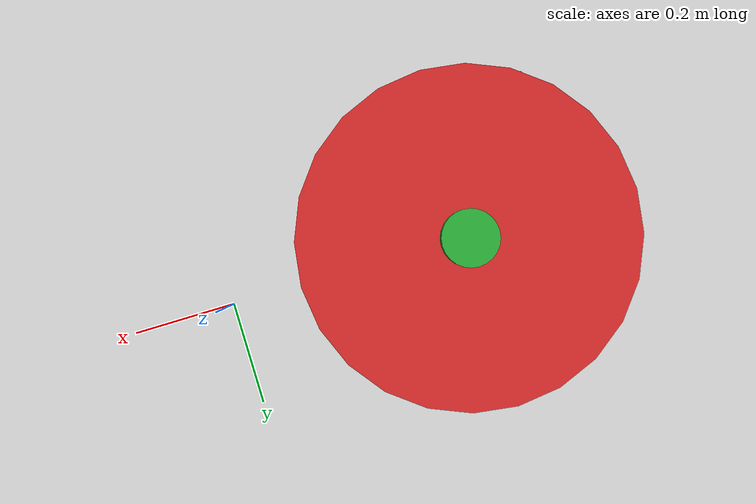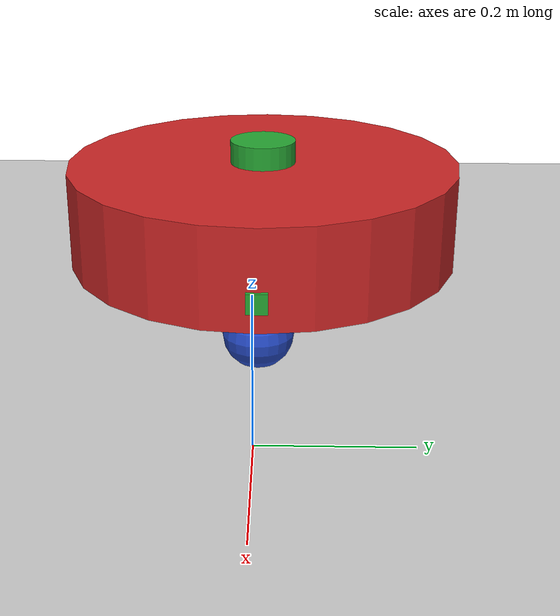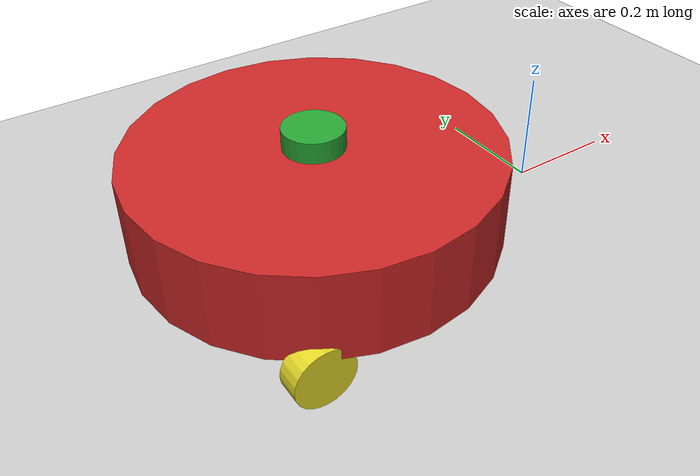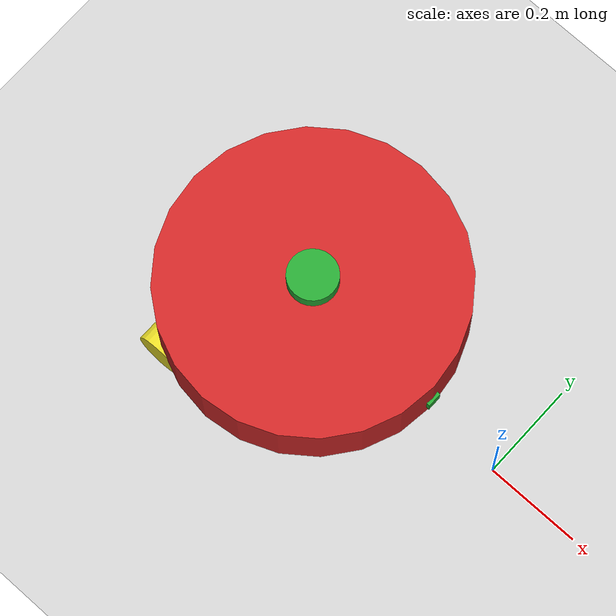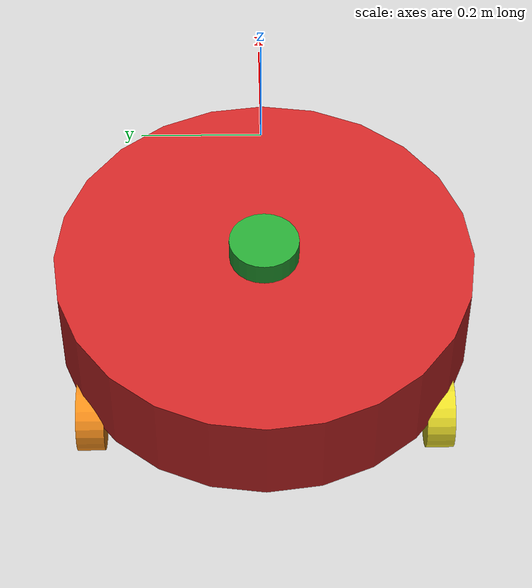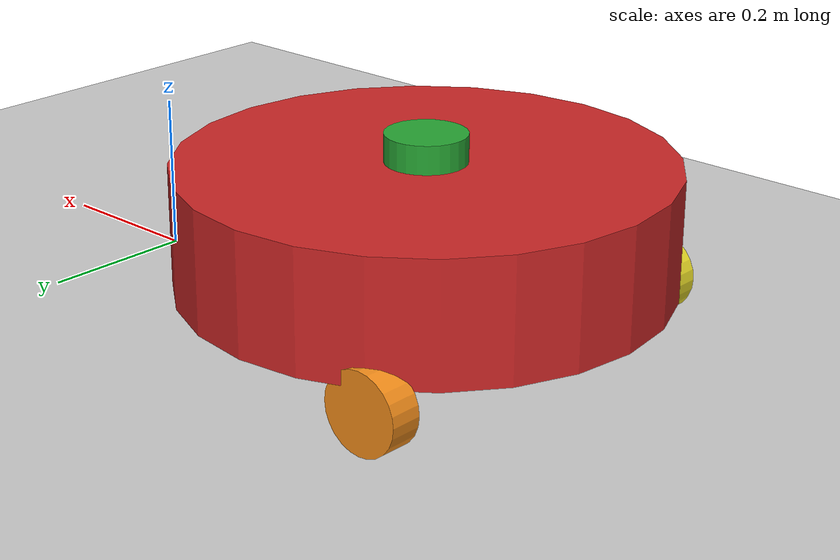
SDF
<sdf version="1.7">
 <world name="default">
  <plugin name="model_state_publisher" filename="libgazebo_ros_state.so"><update_rate>30</update_rate></plugin>
  <model name="ground_plane">
   <static>1</static>
   <link name="link">
    <collision name="collision">
     <geometry><plane><normal>0 0 1</normal><size>100 100</size></plane></geometry>
     <surface>
      <contact><collide_bitmask>65535</collide_bitmask></contact>
      <friction><ode><mu>100</mu><mu2>50</mu2></ode></friction>
     </surface>
    </collision>
    <visual name="visual">
     <cast_shadows>0</cast_shadows>
     <geometry><plane><normal>0 0 1</normal><size>100 100</size></plane></geometry>
     <material>
      <script><uri>file://media/materials/scripts/gazebo.material</uri><name>Gazebo/Grey</name></script>
     </material>
    </visual>
   </link>
  </model>
  <gravity>0 0 -9.8</gravity>
  <magnetic_field>6e-06 2.3e-05 -4.2e-05</magnetic_field>
  <atmosphere type="adiabatic"/>
  <physics type="ode">
   <max_step_size>0.001</max_step_size>
   <real_time_factor>1</real_time_factor>
   <real_time_update_rate>1000</real_time_update_rate>
  </physics>
  <scene>
   <ambient>0.02 0.02 0.02 1</ambient>
   <background>0.02 0.02 0.02 1</background>
   <shadows>1</shadows>
  </scene>
  <audio><device>default</device></audio>
  <spherical_coordinates>
   <surface_model>EARTH_WGS84</surface_model>
   <latitude_deg>0</latitude_deg>
   <longitude_deg>0</longitude_deg>
   <elevation>0</elevation>
   <heading_deg>0</heading_deg>
  </spherical_coordinates>
  <model name="mobile_bot">
   <link name="base_link">
    <inertial>
     <pose>0.048 0 0.068 0 -0 0</pose>
     <mass>0.5</mass>
     <inertia>
      <ixx>0.00953633</ixx>
      <ixy>0</ixy>
      <ixz>0.001632</ixz>
      <iyy>0.0141443</iyy>
      <iyz>0</iyz>
      <izz>0.018333</izz>
     </inertia>
    </inertial>
    <collision name="base_link_fixed_joint_lump__round_body_collision">
     <pose>0 0 0.1 0 -0 0</pose>
     <geometry><cylinder><length>0.15</length><radius>0.3</radius></cylinder></geometry>
    </collision>
    <collision name="base_link_fixed_joint_lump__caster_wheel_collision_1">
     <pose>0.24 0 0 0 -0 0</pose>
     <geometry><sphere><radius>0.05</radius></sphere></geometry>
     <surface><friction><ode><mu>0.001</mu><mu2>0.001</mu2></ode></friction></surface>
    </collision>
    <collision name="base_link_fixed_joint_lump__lidar_link_collision_2">
     <pose>0 0 0.19 0 -0 0</pose>
     <geometry><cylinder><length>0.04</length><radius>0.05</radius></cylinder></geometry>
    </collision>
    <visual name="base_link_fixed_joint_lump__round_body_visual">
     <pose>0 0 0.1 0 -0 0</pose>
     <geometry><cylinder><length>0.15</length><radius>0.3</radius></cylinder></geometry>
     <material>
      <script><name>Gazebo/Red</name><uri>file://media/materials/scripts/gazebo.material</uri></script>
     </material>
    </visual>
    <visual name="base_link_fixed_joint_lump__camera_link_visual_1">
     <pose>0.3 0 0.07 0 -0 0</pose>
     <geometry><box><size>0.01 0.03 0.03</size></box></geometry>
     <material>
      <script><name>Gazebo/Green</name><uri>file://media/materials/scripts/gazebo.material</uri></script>
     </material>
    </visual>
    <visual name="base_link_fixed_joint_lump__caster_wheel_visual_2">
     <pose>0.24 0 0 0 -0 0</pose>
     <geometry><sphere><radius>0.05</radius></sphere></geometry>
     <material>
      <script><name>Gazebo/Blue</name><uri>file://media/materials/scripts/gazebo.material</uri></script>
     </material>
    </visual>
    <visual name="base_link_fixed_joint_lump__lidar_link_visual_3">
     <pose>0 0 0.19 0 -0 0</pose>
     <geometry><cylinder><length>0.04</length><radius>0.05</radius></cylinder></geometry>
     <material>
      <script><name>Gazebo/Green</name><uri>file://media/materials/scripts/gazebo.material</uri></script>
     </material>
    </visual>
    <sensor name="camera" type="camera">
     <visualize>1</visualize>
     <update_rate>10</update_rate>
     <camera>
      <horizontal_fov>1.5708</horizontal_fov>
      <image><format>R8G8B8</format><width>640</width><height>480</height></image>
      <clip><near>0.05</near><far>8</far></clip>
     </camera>
     <plugin name="camera_controller" filename="libgazebo_ros_camera.so">
      <frame_name>camera_link_optical</frame_name>
     </plugin>
     <pose>0.3 0 0.07 0 -0 0</pose>
    </sensor>
    <sensor name="laser" type="ray">
     <visualize>1</visualize>
     <update_rate>10</update_rate>
     <ray>
      <scan>
       <horizontal>
        <samples>180</samples>
        <min_angle>-0.7854</min_angle>
        <max_angle>0.7854</max_angle>
        <resolution>1</resolution>
       </horizontal>
       <vertical><samples>1</samples><min_angle>0</min_angle><max_angle>0</max_angle></vertical>
      </scan>
      <range><min>0.3</min><max>5</max></range>
     </ray>
     <plugin name="laser_controller" filename="libgazebo_ros_ray_sensor.so">
      <ros><argument>~/out:=scan</argument></ros>
      <output_type>sensor_msgs/LaserScan</output_type>
      <frame_name>lidar_link</frame_name>
     </plugin>
     <pose>0 0 0.19 0 -0 0</pose>
    </sensor>
   </link>
   <joint name="left_wheel_joint" type="revolute">
    <pose relative_to="base_link">-0.15 0.25 0 -1.57 0 0</pose>
    <parent>base_link</parent>
    <child>left_wheel</child>
    <axis>
     <xyz>0 0 1</xyz>
     <limit><lower>-1e+16</lower><upper>1e+16</upper></limit>
     <dynamics><spring_reference>0</spring_reference><spring_stiffness>0</spring_stiffness></dynamics>
    </axis>
   </joint>
   <link name="left_wheel">
    <pose relative_to="left_wheel_joint">0 0 0 0 -0 0</pose>
    <inertial>
     <mass>0.1</mass>
     <inertia>
      <ixx>8.33333e-05</ixx>
      <ixy>0</ixy>
      <ixz>0</ixz>
      <iyy>8.33333e-05</iyy>
      <iyz>0</iyz>
      <izz>0.000125</izz>
     </inertia>
    </inertial>
    <collision name="left_wheel_collision">
     <geometry><cylinder><length>0.04</length><radius>0.05</radius></cylinder></geometry>
    </collision>
    <visual name="left_wheel_visual">
     <geometry><cylinder><length>0.04</length><radius>0.05</radius></cylinder></geometry>
     <material>
      <script><name>Gazebo/Orange</name><uri>file://media/materials/scripts/gazebo.material</uri></script>
     </material>
    </visual>
   </link>
   <joint name="right_wheel_joint" type="revolute">
    <pose relative_to="base_link">-0.15 -0.25 0 1.57 -0 0</pose>
    <parent>base_link</parent>
    <child>right_wheel</child>
    <axis>
     <xyz>0 0 -1</xyz>
     <limit><lower>-1e+16</lower><upper>1e+16</upper></limit>
     <dynamics><spring_reference>0</spring_reference><spring_stiffness>0</spring_stiffness></dynamics>
    </axis>
   </joint>
   <link name="right_wheel">
    <pose relative_to="right_wheel_joint">0 0 0 0 -0 0</pose>
    <inertial>
     <mass>0.1</mass>
     <inertia>
      <ixx>8.33333e-05</ixx>
      <ixy>0</ixy>
      <ixz>0</ixz>
      <iyy>8.33333e-05</iyy>
      <iyz>0</iyz>
      <izz>0.000125</izz>
     </inertia>
    </inertial>
    <collision name="right_wheel_collision">
     <geometry><cylinder><length>0.04</length><radius>0.05</radius></cylinder></geometry>
    </collision>
    <visual name="right_wheel_visual">
     <geometry><cylinder><length>0.04</length><radius>0.05</radius></cylinder></geometry>
     <material>
      <script><name>Gazebo/Yellow</name><uri>file://media/materials/scripts/gazebo.material</uri></script>
     </material>
    </visual>
   </link>
   <static>0</static>
   <plugin name="diff_drive" filename="libgazebo_ros_diff_drive.so">
    <left_joint>left_wheel_joint</left_joint>
    <right_joint>right_wheel_joint</right_joint>
    <wheel_separation>0.50</wheel_separation>
    <wheel_diameter>0.1</wheel_diameter>
    <max_wheel_torque>200</max_wheel_torque>
    <max_wheel_acceleration>10.0</max_wheel_acceleration>
    <odometry_frame>odom</odometry_frame>
    <robot_base_frame>base_link</robot_base_frame>
    <publish_odom>1</publish_odom>
    <publish_odom_tf>1</publish_odom_tf>
    <publish_wheel_tf>1</publish_wheel_tf>
   </plugin>
   <pose>-0.457897 0.001898 0.050008 1e-05 3.2e-05 -0.004785</pose>
  </model>
  <light name="user_spot_light_1" type="spot">
   <pose>0.29879 0.04289 1 0 -0 0</pose>
   <diffuse>0.5 0.5 0.5 1</diffuse>
   <specular>0.1 0.1 0.1 1</specular>
   <direction>0 0 -1</direction>
   <attenuation>
    <range>20</range>
    <constant>0.5</constant>
    <linear>0.01</linear>
    <quadratic>0.001</quadratic>
   </attenuation>
   <cast_shadows>0</cast_shadows>
   <spot><inner_angle>0.6</inner_angle><outer_angle>1</outer_angle><falloff>1</falloff></spot>
  </light>
  <light name="user_spot_light_0" type="spot">
   <pose>0.192117 0.648766 1 0 -0 0</pose>
   <diffuse>0.5 0.5 0.5 1</diffuse>
   <specular>0.1 0.1 0.1 1</specular>
   <direction>0 0 -1</direction>
   <attenuation>
    <range>20</range>
    <constant>0.5</constant>
    <linear>0.01</linear>
    <quadratic>0.001</quadratic>
   </attenuation>
   <cast_shadows>0</cast_shadows>
   <spot><inner_angle>0.6</inner_angle><outer_angle>1</outer_angle><falloff>1</falloff></spot>
  </light>
  <light name="user_spot_light_2" type="spot">
   <pose>1.92453 0.034716 1 0 -0 0</pose>
   <diffuse>0.5 0.5 0.5 1</diffuse>
   <specular>0.1 0.1 0.1 1</specular>
   <direction>0 0 -1</direction>
   <attenuation>
    <range>20</range>
    <constant>0.5</constant>
    <linear>0.01</linear>
    <quadratic>0.001</quadratic>
   </attenuation>
   <cast_shadows>0</cast_shadows>
   <spot><inner_angle>0.6</inner_angle><outer_angle>1</outer_angle><falloff>1</falloff></spot>
  </light>
  <light name="user_spot_light_3" type="spot">
   <pose>0.348208 -0.669238 1 0 -0 0</pose>
   <diffuse>0.5 0.5 0.5 1</diffuse>
   <specular>0.1 0.1 0.1 1</specular>
   <direction>0 0 -1</direction>
   <attenuation>
    <range>20</range>
    <constant>0.5</constant>
    <linear>0.01</linear>
    <quadratic>0.001</quadratic>
   </attenuation>
   <cast_shadows>0</cast_shadows>
   <spot><inner_angle>0.6</inner_angle><outer_angle>1</outer_angle><falloff>1</falloff></spot>
  </light>
 </world>
</sdf>
